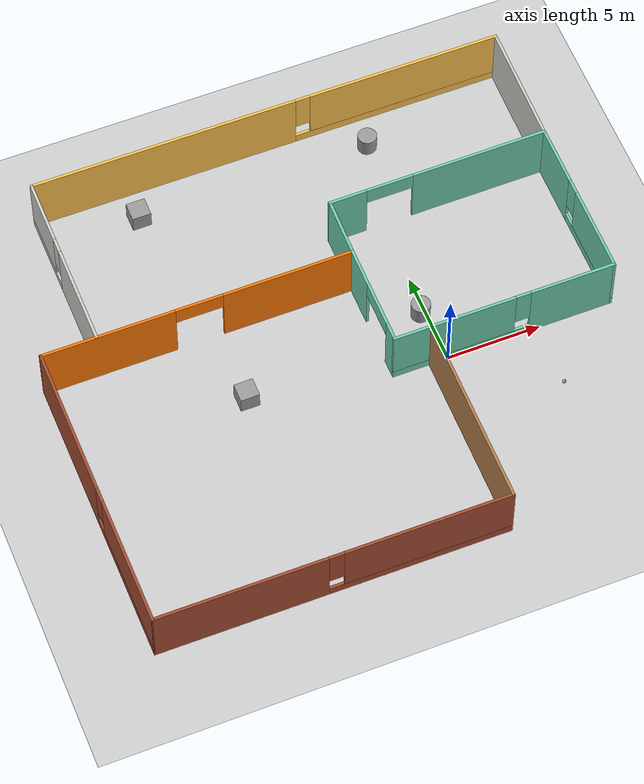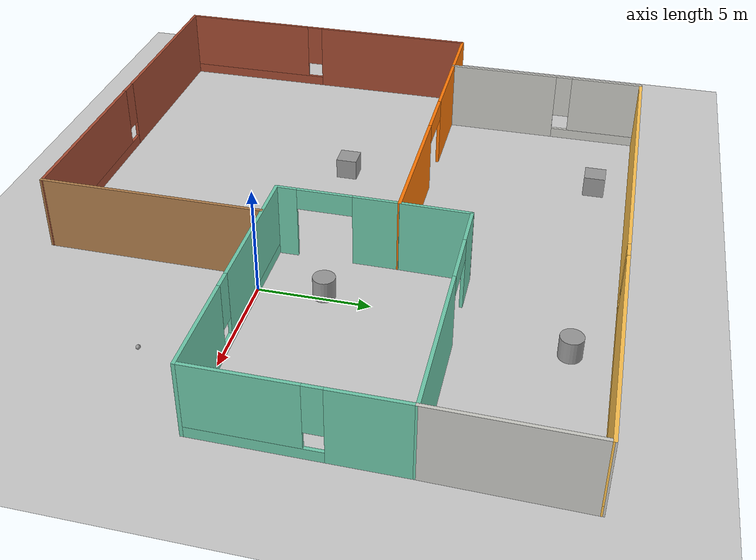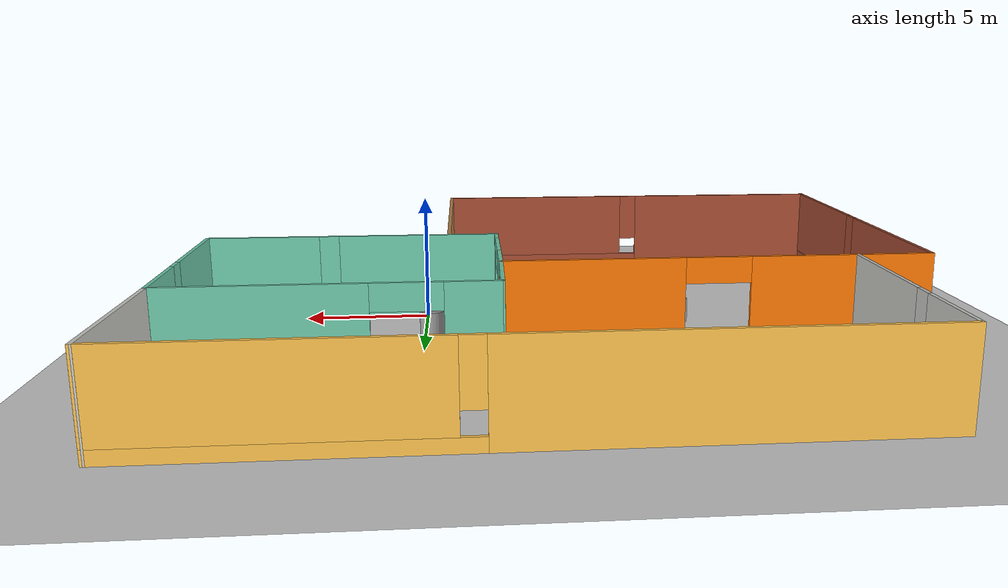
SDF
<sdf version="1.6">
 <world name="default">
  <plugin name="hello" filename="libhello.so"/>
  <light name="sun" type="directional">
   <pose>0 0 10 0 -0 0</pose>
   <diffuse>0.8 0.8 0.8 1</diffuse>
   <specular>0.2 0.2 0.2 1</specular>
   <attenuation>
    <range>1000</range>
    <constant>0.9</constant>
    <linear>0.01</linear>
    <quadratic>0.001</quadratic>
   </attenuation>
   <direction>-0.5 0.1 -0.9</direction>
  </light>
  <model name="ground_plane">
   <static>1</static>
   <link name="link">
    <collision name="collision">
     <geometry><plane><normal>0 0 1</normal><size>100 100</size></plane></geometry>
     <surface><friction><ode><mu>100</mu><mu2>50</mu2></ode></friction></surface>
    </collision>
    <visual name="visual">
     <cast_shadows>0</cast_shadows>
     <geometry><plane><normal>0 0 1</normal><size>100 100</size></plane></geometry>
     <material>
      <script><uri>file://media/materials/scripts/gazebo.material</uri><name>Gazebo/Grey</name></script>
     </material>
    </visual>
   </link>
  </model>
  <gravity>0 0 -9.8</gravity>
  <magnetic_field>6e-06 2.3e-05 -4.2e-05</magnetic_field>
  <atmosphere type="adiabatic"/>
  <physics name="default_physics" default="0" type="ode">
   <max_step_size>0.001</max_step_size>
   <real_time_factor>1</real_time_factor>
   <real_time_update_rate>1000</real_time_update_rate>
  </physics>
  <scene><ambient>0.4 0.4 0.4 1</ambient><background>0.7 0.7 0.7 1</background><shadows>1</shadows></scene>
  <spherical_coordinates>
   <surface_model>EARTH_WGS84</surface_model>
   <latitude_deg>0</latitude_deg>
   <longitude_deg>0</longitude_deg>
   <elevation>0</elevation>
   <heading_deg>0</heading_deg>
  </spherical_coordinates>
  <model name="Building">
   <pose>-5.17969 2.53003 0 0 -0 0</pose>
   <link name="Wall_11">
    <pose>14.0376 1.85918 0 0 0 -1.5708</pose>
    <visual name="Wall_11_Visual_0">
     <pose>-2.74243 0 1.75 0 -0 0</pose>
     <geometry><box><size>3.32963 0.15 3.5</size></box></geometry>
     <material>
      <script><uri>file://media/materials/scripts/gazebo.material</uri><name>Gazebo/Grey</name></script>
      <ambient>0.435294 0.796078 0.67451 1</ambient>
     </material>
     <meta><layer>0</layer></meta>
    </visual>
    <collision name="Wall_11_Collision_0">
     <geometry><box><size>3.32963 0.15 3.5</size></box></geometry>
     <pose>-2.74243 0 1.75 0 -0 0</pose>
    </collision>
    <visual name="Wall_11_Visual_1">
     <pose>1.66481 0 0.25 0 -0 0</pose>
     <geometry><box><size>5.48487 0.15 0.5</size></box></geometry>
     <material>
      <script><uri>file://media/materials/scripts/gazebo.material</uri><name>Gazebo/Grey</name></script>
      <ambient>0.435294 0.796078 0.67451 1</ambient>
     </material>
     <meta><layer>0</layer></meta>
    </visual>
    <collision name="Wall_11_Collision_1">
     <geometry><box><size>5.48487 0.15 0.5</size></box></geometry>
     <pose>1.66481 0 0.25 0 -0 0</pose>
    </collision>
    <visual name="Wall_11_Visual_2">
     <pose>2.06481 0 2 0 -0 0</pose>
     <geometry><box><size>4.68487 0.15 3</size></box></geometry>
     <material>
      <script><uri>file://media/materials/scripts/gazebo.material</uri><name>Gazebo/Grey</name></script>
      <ambient>0.435294 0.796078 0.67451 1</ambient>
     </material>
     <meta><layer>0</layer></meta>
    </visual>
    <collision name="Wall_11_Collision_2">
     <geometry><box><size>4.68487 0.15 3</size></box></geometry>
     <pose>2.06481 0 2 0 -0 0</pose>
    </collision>
    <visual name="Wall_11_Visual_3">
     <pose>-0.677619 0 2.4 0 -0 0</pose>
     <geometry><box><size>0.8 0.15 2.2</size></box></geometry>
     <material>
      <script><uri>file://media/materials/scripts/gazebo.material</uri><name>Gazebo/Grey</name></script>
      <ambient>0.435294 0.796078 0.67451 1</ambient>
     </material>
     <meta><layer>0</layer></meta>
    </visual>
    <collision name="Wall_11_Collision_3">
     <geometry><box><size>0.8 0.15 2.2</size></box></geometry>
     <pose>-0.677619 0 2.4 0 -0 0</pose>
    </collision>
   </link>
   <link name="Wall_12">
    <pose>8.15813 -2.47282 0 0 -0 3.14159</pose>
    <visual name="Wall_12_Visual_0">
     <pose>-3.67134 0 1.75 0 -0 0</pose>
     <geometry><box><size>4.56647 0.15 3.5</size></box></geometry>
     <material>
      <script><uri>file://media/materials/scripts/gazebo.material</uri><name>Gazebo/Grey</name></script>
      <ambient>0.435294 0.796078 0.67451 1</ambient>
     </material>
     <meta><layer>0</layer></meta>
    </visual>
    <collision name="Wall_12_Collision_0">
     <geometry><box><size>4.56647 0.15 3.5</size></box></geometry>
     <pose>-3.67134 0 1.75 0 -0 0</pose>
    </collision>
    <visual name="Wall_12_Visual_1">
     <pose>2.28324 0 0.25 0 -0 0</pose>
     <geometry><box><size>7.34269 0.15 0.5</size></box></geometry>
     <material>
      <script><uri>file://media/materials/scripts/gazebo.material</uri><name>Gazebo/Grey</name></script>
      <ambient>0.435294 0.796078 0.67451 1</ambient>
     </material>
     <meta><layer>0</layer></meta>
    </visual>
    <collision name="Wall_12_Collision_1">
     <geometry><box><size>7.34269 0.15 0.5</size></box></geometry>
     <pose>2.28324 0 0.25 0 -0 0</pose>
    </collision>
    <visual name="Wall_12_Visual_2">
     <pose>2.68324 0 2 0 -0 0</pose>
     <geometry><box><size>6.54269 0.15 3</size></box></geometry>
     <material>
      <script><uri>file://media/materials/scripts/gazebo.material</uri><name>Gazebo/Grey</name></script>
      <ambient>0.435294 0.796078 0.67451 1</ambient>
     </material>
     <meta><layer>0</layer></meta>
    </visual>
    <collision name="Wall_12_Collision_2">
     <geometry><box><size>6.54269 0.15 3</size></box></geometry>
     <pose>2.68324 0 2 0 -0 0</pose>
    </collision>
    <visual name="Wall_12_Visual_3">
     <pose>-0.988107 0 2.4 0 -0 0</pose>
     <geometry><box><size>0.8 0.15 2.2</size></box></geometry>
     <material>
      <script><uri>file://media/materials/scripts/gazebo.material</uri><name>Gazebo/Grey</name></script>
      <ambient>0.435294 0.796078 0.67451 1</ambient>
     </material>
     <meta><layer>0</layer></meta>
    </visual>
    <collision name="Wall_12_Collision_3">
     <geometry><box><size>0.8 0.15 2.2</size></box></geometry>
     <pose>-0.988107 0 2.4 0 -0 0</pose>
    </collision>
   </link>
   <link name="Wall_14">
    <collision name="Wall_14_Collision">
     <geometry><box><size>10.2635 0.15 3.5</size></box></geometry>
     <pose>0 0 1.75 0 -0 0</pose>
    </collision>
    <visual name="Wall_14_Visual">
     <pose>0 0 1.75 0 -0 0</pose>
     <geometry><box><size>10.2635 0.15 3.5</size></box></geometry>
     <material>
      <script><uri>file://media/materials/scripts/gazebo.material</uri><name>Gazebo/Wood</name></script>
      <ambient>0.996078 0.47451 0.0196078 1</ambient>
     </material>
     <meta><layer>0</layer></meta>
    </visual>
    <pose>4.22413 -7.58082 0 0 0 -1.57248</pose>
   </link>
   <link name="Wall_16">
    <pose>-14.0979 -4.78882 0 0 0 -1.56739</pose>
    <visual name="Wall_16_Visual_0">
     <pose>-3.8228 0 1.75 0 -0 0</pose>
     <geometry><box><size>8.0561 0.15 3.5</size></box></geometry>
     <material>
      <script><uri>file://media/materials/scripts/gazebo.material</uri><name>Gazebo/Bricks</name></script>
      <ambient>0.996078 0.47451 0.0196078 1</ambient>
     </material>
     <meta><layer>0</layer></meta>
    </visual>
    <collision name="Wall_16_Collision_0">
     <geometry><box><size>8.0561 0.15 3.5</size></box></geometry>
     <pose>-3.8228 0 1.75 0 -0 0</pose>
    </collision>
    <visual name="Wall_16_Visual_1">
     <pose>4.02805 0 0.25 0 -0 0</pose>
     <geometry><box><size>7.6456 0.15 0.5</size></box></geometry>
     <material>
      <script><uri>file://media/materials/scripts/gazebo.material</uri><name>Gazebo/Bricks</name></script>
      <ambient>0.996078 0.47451 0.0196078 1</ambient>
     </material>
     <meta><layer>0</layer></meta>
    </visual>
    <collision name="Wall_16_Collision_1">
     <geometry><box><size>7.6456 0.15 0.5</size></box></geometry>
     <pose>4.02805 0 0.25 0 -0 0</pose>
    </collision>
    <visual name="Wall_16_Visual_2">
     <pose>4.42805 0 2 0 -0 0</pose>
     <geometry><box><size>6.8456 0.15 3</size></box></geometry>
     <material>
      <script><uri>file://media/materials/scripts/gazebo.material</uri><name>Gazebo/Bricks</name></script>
      <ambient>0.996078 0.47451 0.0196078 1</ambient>
     </material>
     <meta><layer>0</layer></meta>
    </visual>
    <collision name="Wall_16_Collision_2">
     <geometry><box><size>6.8456 0.15 3</size></box></geometry>
     <pose>4.42805 0 2 0 -0 0</pose>
    </collision>
    <visual name="Wall_16_Visual_3">
     <pose>0.605252 0 2.4 0 -0 0</pose>
     <geometry><box><size>0.8 0.15 2.2</size></box></geometry>
     <material>
      <script><uri>file://media/materials/scripts/gazebo.material</uri><name>Gazebo/Bricks</name></script>
      <ambient>0.996078 0.47451 0.0196078 1</ambient>
     </material>
     <meta><layer>0</layer></meta>
    </visual>
    <collision name="Wall_16_Collision_3">
     <geometry><box><size>0.8 0.15 2.2</size></box></geometry>
     <pose>0.605252 0 2.4 0 -0 0</pose>
    </collision>
   </link>
   <link name="Wall_17">
    <pose>-4.92787 -12.6013 0 0 0 -0.003992</pose>
    <visual name="Wall_17_Visual_0">
     <pose>-4.76402 0 1.75 0 -0 0</pose>
     <geometry><box><size>8.909 0.15 3.5</size></box></geometry>
     <material>
      <script><uri>file://media/materials/scripts/gazebo.material</uri><name>Gazebo/Bricks</name></script>
      <ambient>0.996078 0.47451 0.0196078 1</ambient>
     </material>
     <meta><layer>0</layer></meta>
    </visual>
    <collision name="Wall_17_Collision_0">
     <geometry><box><size>8.909 0.15 3.5</size></box></geometry>
     <pose>-4.76402 0 1.75 0 -0 0</pose>
    </collision>
    <visual name="Wall_17_Visual_1">
     <pose>4.4545 0 0.25 0 -0 0</pose>
     <geometry><box><size>9.52804 0.15 0.5</size></box></geometry>
     <material>
      <script><uri>file://media/materials/scripts/gazebo.material</uri><name>Gazebo/Bricks</name></script>
      <ambient>0.996078 0.47451 0.0196078 1</ambient>
     </material>
     <meta><layer>0</layer></meta>
    </visual>
    <collision name="Wall_17_Collision_1">
     <geometry><box><size>9.52804 0.15 0.5</size></box></geometry>
     <pose>4.4545 0 0.25 0 -0 0</pose>
    </collision>
    <visual name="Wall_17_Visual_2">
     <pose>4.8545 0 2 0 -0 0</pose>
     <geometry><box><size>8.72804 0.15 3</size></box></geometry>
     <material>
      <script><uri>file://media/materials/scripts/gazebo.material</uri><name>Gazebo/Bricks</name></script>
      <ambient>0.996078 0.47451 0.0196078 1</ambient>
     </material>
     <meta><layer>0</layer></meta>
    </visual>
    <collision name="Wall_17_Collision_2">
     <geometry><box><size>8.72804 0.15 3</size></box></geometry>
     <pose>4.8545 0 2 0 -0 0</pose>
    </collision>
    <visual name="Wall_17_Visual_3">
     <pose>0.090482 0 2.4 0 -0 0</pose>
     <geometry><box><size>0.8 0.15 2.2</size></box></geometry>
     <material>
      <script><uri>file://media/materials/scripts/gazebo.material</uri><name>Gazebo/Bricks</name></script>
      <ambient>0.996078 0.47451 0.0196078 1</ambient>
     </material>
     <meta><layer>0</layer></meta>
    </visual>
    <collision name="Wall_17_Collision_3">
     <geometry><box><size>0.8 0.15 2.2</size></box></geometry>
     <pose>0.090482 0 2.4 0 -0 0</pose>
    </collision>
   </link>
   <link name="Wall_19">
    <pose>-11.2264 7.83718 0 0 -0 1.5708</pose>
    <visual name="Wall_19_Visual_0">
     <pose>-2.16282 0 1.75 0 -0 0</pose>
     <geometry><box><size>5.42436 0.15 3.5</size></box></geometry>
     <material>
      <script><uri>file://media/materials/scripts/gazebo.material</uri><name>Gazebo/CeilingTiled</name></script>
      <ambient>1 0.764706 0.305882 1</ambient>
     </material>
     <meta><layer>0</layer></meta>
    </visual>
    <collision name="Wall_19_Collision_0">
     <geometry><box><size>5.42436 0.15 3.5</size></box></geometry>
     <pose>-2.16282 0 1.75 0 -0 0</pose>
    </collision>
    <visual name="Wall_19_Visual_1">
     <pose>2.71218 0 0.25 0 -0 0</pose>
     <geometry><box><size>4.32564 0.15 0.5</size></box></geometry>
     <material>
      <script><uri>file://media/materials/scripts/gazebo.material</uri><name>Gazebo/CeilingTiled</name></script>
      <ambient>1 0.764706 0.305882 1</ambient>
     </material>
     <meta><layer>0</layer></meta>
    </visual>
    <collision name="Wall_19_Collision_1">
     <geometry><box><size>4.32564 0.15 0.5</size></box></geometry>
     <pose>2.71218 0 0.25 0 -0 0</pose>
    </collision>
    <visual name="Wall_19_Visual_2">
     <pose>3.11218 0 2 0 -0 0</pose>
     <geometry><box><size>3.52564 0.15 3</size></box></geometry>
     <material>
      <script><uri>file://media/materials/scripts/gazebo.material</uri><name>Gazebo/CeilingTiled</name></script>
      <ambient>1 0.764706 0.305882 1</ambient>
     </material>
     <meta><layer>0</layer></meta>
    </visual>
    <collision name="Wall_19_Collision_2">
     <geometry><box><size>3.52564 0.15 3</size></box></geometry>
     <pose>3.11218 0 2 0 -0 0</pose>
    </collision>
    <visual name="Wall_19_Visual_3">
     <pose>0.949362 0 2.4 0 -0 0</pose>
     <geometry><box><size>0.8 0.15 2.2</size></box></geometry>
     <material>
      <script><uri>file://media/materials/scripts/gazebo.material</uri><name>Gazebo/CeilingTiled</name></script>
      <ambient>1 0.764706 0.305882 1</ambient>
     </material>
     <meta><layer>0</layer></meta>
    </visual>
    <collision name="Wall_19_Collision_3">
     <geometry><box><size>0.8 0.15 2.2</size></box></geometry>
     <pose>0.949362 0 2.4 0 -0 0</pose>
    </collision>
   </link>
   <link name="Wall_20">
    <pose>1.44863 12.6372 0 0 -0 0</pose>
    <visual name="Wall_20_Visual_0">
     <pose>-5.59643 0 1.75 0 -0 0</pose>
     <geometry><box><size>14.3071 0.15 3.5</size></box></geometry>
     <material>
      <script><uri>file://media/materials/scripts/gazebo.material</uri><name>Gazebo/Grey</name></script>
      <ambient>1 0.764706 0.305882 1</ambient>
     </material>
     <meta><layer>0</layer></meta>
    </visual>
    <collision name="Wall_20_Collision_0">
     <geometry><box><size>14.3071 0.15 3.5</size></box></geometry>
     <pose>-5.59643 0 1.75 0 -0 0</pose>
    </collision>
    <visual name="Wall_20_Visual_1">
     <pose>7.15357 0 0.25 0 -0 0</pose>
     <geometry><box><size>11.1929 0.15 0.5</size></box></geometry>
     <material>
      <script><uri>file://media/materials/scripts/gazebo.material</uri><name>Gazebo/Grey</name></script>
      <ambient>1 0.764706 0.305882 1</ambient>
     </material>
     <meta><layer>0</layer></meta>
    </visual>
    <collision name="Wall_20_Collision_1">
     <geometry><box><size>11.1929 0.15 0.5</size></box></geometry>
     <pose>7.15357 0 0.25 0 -0 0</pose>
    </collision>
    <visual name="Wall_20_Visual_2">
     <pose>7.55357 0 2 0 -0 0</pose>
     <geometry><box><size>10.3929 0.15 3</size></box></geometry>
     <material>
      <script><uri>file://media/materials/scripts/gazebo.material</uri><name>Gazebo/Grey</name></script>
      <ambient>1 0.764706 0.305882 1</ambient>
     </material>
     <meta><layer>0</layer></meta>
    </visual>
    <collision name="Wall_20_Collision_2">
     <geometry><box><size>10.3929 0.15 3</size></box></geometry>
     <pose>7.55357 0 2 0 -0 0</pose>
    </collision>
    <visual name="Wall_20_Visual_3">
     <pose>1.95713 0 2.4 0 -0 0</pose>
     <geometry><box><size>0.8 0.15 2.2</size></box></geometry>
     <material>
      <script><uri>file://media/materials/scripts/gazebo.material</uri><name>Gazebo/Grey</name></script>
      <ambient>1 0.764706 0.305882 1</ambient>
     </material>
     <meta><layer>0</layer></meta>
    </visual>
    <collision name="Wall_20_Collision_3">
     <geometry><box><size>0.8 0.15 2.2</size></box></geometry>
     <pose>1.95713 0 2.4 0 -0 0</pose>
    </collision>
   </link>
   <link name="Wall_21">
    <collision name="Wall_21_Collision">
     <geometry><box><size>6.59647 0.15 3.5</size></box></geometry>
     <pose>0 0 1.75 0 -0 0</pose>
    </collision>
    <visual name="Wall_21_Visual">
     <pose>0 0 1.75 0 -0 0</pose>
     <geometry><box><size>6.59647 0.15 3.5</size></box></geometry>
     <material>
      <script><uri>file://media/materials/scripts/gazebo.material</uri><name>Gazebo/CeilingTiled</name></script>
      <ambient>1 0.764706 0.305882 1</ambient>
     </material>
     <meta><layer>0</layer></meta>
    </visual>
    <pose>14.0806 9.41418 0 0 0 -1.58414</pose>
   </link>
   <link name="Wall_5">
    <pose>-5.92287 3.00718 0 0 -0 0.002439</pose>
    <visual name="Wall_5_Visual_0">
     <pose>-4.73677 0 1.75 0 -0 0</pose>
     <geometry><box><size>7.07951 0.15 3.5</size></box></geometry>
     <material>
      <script><uri>file://media/materials/scripts/gazebo.material</uri><name>Gazebo/Grey</name></script>
      <ambient>0.996078 0.47451 0.0196078 1</ambient>
     </material>
     <meta><layer>0</layer></meta>
    </visual>
    <collision name="Wall_5_Collision_0">
     <geometry><box><size>7.07951 0.15 3.5</size></box></geometry>
     <pose>-4.73677 0 1.75 0 -0 0</pose>
    </collision>
    <visual name="Wall_5_Visual_1">
     <pose>4.78975 0 1.75 0 -0 0</pose>
     <geometry><box><size>6.97354 0.15 3.5</size></box></geometry>
     <material>
      <script><uri>file://media/materials/scripts/gazebo.material</uri><name>Gazebo/Grey</name></script>
      <ambient>0.996078 0.47451 0.0196078 1</ambient>
     </material>
     <meta><layer>0</layer></meta>
    </visual>
    <collision name="Wall_5_Collision_1">
     <geometry><box><size>6.97354 0.15 3.5</size></box></geometry>
     <pose>4.78975 0 1.75 0 -0 0</pose>
    </collision>
    <visual name="Wall_5_Visual_2">
     <pose>0.052984 0 3 0 -0 0</pose>
     <geometry><box><size>2.5 0.15 1</size></box></geometry>
     <material>
      <script><uri>file://media/materials/scripts/gazebo.material</uri><name>Gazebo/Grey</name></script>
      <ambient>0.996078 0.47451 0.0196078 1</ambient>
     </material>
     <meta><layer>0</layer></meta>
    </visual>
    <collision name="Wall_5_Collision_2">
     <geometry><box><size>2.5 0.15 1</size></box></geometry>
     <pose>0.052984 0 3 0 -0 0</pose>
    </collision>
   </link>
   <link name="Wall_6">
    <pose>2.27863 0.352177 0 0 0 -1.5708</pose>
    <visual name="Wall_6_Visual_0">
     <pose>-1.6795 0 1.75 0 -0 0</pose>
     <geometry><box><size>2.141 0.15 3.5</size></box></geometry>
     <material>
      <script><uri>file://media/materials/scripts/gazebo.material</uri><name>Gazebo/Grey</name></script>
      <ambient>0.435294 0.796078 0.67451 1</ambient>
     </material>
     <meta><layer>0</layer></meta>
    </visual>
    <collision name="Wall_6_Collision_0">
     <geometry><box><size>2.141 0.15 3.5</size></box></geometry>
     <pose>-1.6795 0 1.75 0 -0 0</pose>
    </collision>
    <visual name="Wall_6_Visual_1">
     <pose>2.3205 0 1.75 0 -0 0</pose>
     <geometry><box><size>0.859005 0.15 3.5</size></box></geometry>
     <material>
      <script><uri>file://media/materials/scripts/gazebo.material</uri><name>Gazebo/Grey</name></script>
      <ambient>0.435294 0.796078 0.67451 1</ambient>
     </material>
     <meta><layer>0</layer></meta>
    </visual>
    <collision name="Wall_6_Collision_1">
     <geometry><box><size>0.859005 0.15 3.5</size></box></geometry>
     <pose>2.3205 0 1.75 0 -0 0</pose>
    </collision>
    <visual name="Wall_6_Visual_2">
     <pose>0.640995 0 3 0 -0 0</pose>
     <geometry><box><size>2.5 0.15 1</size></box></geometry>
     <material>
      <script><uri>file://media/materials/scripts/gazebo.material</uri><name>Gazebo/Grey</name></script>
      <ambient>0.435294 0.796078 0.67451 1</ambient>
     </material>
     <meta><layer>0</layer></meta>
    </visual>
    <collision name="Wall_6_Collision_2">
     <geometry><box><size>2.5 0.15 1</size></box></geometry>
     <pose>0.640995 0 3 0 -0 0</pose>
    </collision>
   </link>
   <link name="Wall_8">
    <collision name="Wall_8_Collision">
     <geometry><box><size>3.26826 0.15 3.5</size></box></geometry>
     <pose>0 0 1.75 0 -0 0</pose>
    </collision>
    <visual name="Wall_8_Visual">
     <pose>0 0 1.75 0 -0 0</pose>
     <geometry><box><size>3.26826 0.15 3.5</size></box></geometry>
     <material>
      <script><uri>file://media/materials/scripts/gazebo.material</uri><name>Gazebo/Grey</name></script>
      <ambient>0.435294 0.796078 0.67451 1</ambient>
     </material>
     <meta><layer>0</layer></meta>
    </visual>
    <pose>2.30213 4.58618 0 0 -0 1.55572</pose>
   </link>
   <link name="Wall_9">
    <pose>8.18163 6.16818 0 0 -0 0.003928</pose>
    <visual name="Wall_9_Visual_0">
     <pose>-4.90179 0 1.75 0 -0 0</pose>
     <geometry><box><size>2.05906 0.15 3.5</size></box></geometry>
     <material>
      <script><uri>file://media/materials/scripts/gazebo.material</uri><name>Gazebo/Grey</name></script>
      <ambient>0.435294 0.796078 0.67451 1</ambient>
     </material>
     <meta><layer>0</layer></meta>
    </visual>
    <collision name="Wall_9_Collision_0">
     <geometry><box><size>2.05906 0.15 3.5</size></box></geometry>
     <pose>-4.90179 0 1.75 0 -0 0</pose>
    </collision>
    <visual name="Wall_9_Visual_1">
     <pose>2.27953 0 1.75 0 -0 0</pose>
     <geometry><box><size>7.30357 0.15 3.5</size></box></geometry>
     <material>
      <script><uri>file://media/materials/scripts/gazebo.material</uri><name>Gazebo/Grey</name></script>
      <ambient>0.435294 0.796078 0.67451 1</ambient>
     </material>
     <meta><layer>0</layer></meta>
    </visual>
    <collision name="Wall_9_Collision_1">
     <geometry><box><size>7.30357 0.15 3.5</size></box></geometry>
     <pose>2.27953 0 1.75 0 -0 0</pose>
    </collision>
    <visual name="Wall_9_Visual_2">
     <pose>-2.62226 0 3 0 -0 0</pose>
     <geometry><box><size>2.5 0.15 1</size></box></geometry>
     <material>
      <script><uri>file://media/materials/scripts/gazebo.material</uri><name>Gazebo/Grey</name></script>
      <ambient>0.435294 0.796078 0.67451 1</ambient>
     </material>
     <meta><layer>0</layer></meta>
    </visual>
    <collision name="Wall_9_Collision_2">
     <geometry><box><size>2.5 0.15 1</size></box></geometry>
     <pose>-2.62226 0 3 0 -0 0</pose>
    </collision>
   </link>
   <static>1</static>
  </model>
  <model name="my_ball">
   <link name="link_0">
    <inertial>
     <mass>1</mass>
     <inertia><ixx>0.1</ixx><ixy>0</ixy><ixz>0</ixz><iyy>0.1</iyy><iyz>0</iyz><izz>0.1</izz></inertia>
    </inertial>
    <visual name="visual">
     <geometry><sphere><radius>0.1</radius></sphere></geometry>
     <material>
      <lighting>1</lighting>
      <script><uri>file://media/materials/scripts/gazebo.material</uri><name>Gazebo/Grey</name></script>
      <shader type="pixel"><normal_map>__default__</normal_map></shader>
      <ambient>1 1 1 1</ambient>
      <diffuse>1 1 1 1</diffuse>
      <specular>1 1 1 1</specular>
      <emissive>1 1 1 1</emissive>
     </material>
    </visual>
    <collision name="collision">
     <geometry><sphere><radius>0.1</radius></sphere></geometry>
     <surface>
      <friction>
       <ode><mu>1</mu><mu2>1</mu2><fdir1>0 0 0</fdir1><slip1>0</slip1><slip2>0</slip2></ode>
       <torsional>
        <coefficient>1</coefficient>
        <patch_radius>0</patch_radius>
        <surface_radius>0</surface_radius>
        <use_patch_radius>1</use_patch_radius>
        <ode><slip>0</slip></ode>
       </torsional>
      </friction>
      <bounce><restitution_coefficient>0</restitution_coefficient><threshold>1e+06</threshold></bounce>
      <contact>
       <collide_without_contact>0</collide_without_contact>
       <collide_without_contact_bitmask>1</collide_without_contact_bitmask>
       <collide_bitmask>1</collide_bitmask>
       <ode>
        <soft_cfm>0</soft_cfm>
        <soft_erp>0.2</soft_erp>
        <kp>1e+13</kp>
        <kd>1</kd>
        <max_vel>0.01</max_vel>
        <min_depth>0</min_depth>
       </ode>
       <bullet>
        <split_impulse>1</split_impulse>
        <split_impulse_penetration_threshold>-0.01</split_impulse_penetration_threshold>
        <soft_cfm>0</soft_cfm>
        <soft_erp>0.2</soft_erp>
        <kp>1e+13</kp>
        <kd>1</kd>
       </bullet>
      </contact>
     </surface>
    </collision>
   </link>
   <static>0</static>
   <pose>4.82553 -3.43016 0.1 -0.018471 3e-06 -0</pose>
  </model>
  <model name="unit_box">
   <pose>-10.1718 1.42828 0.499995 0 1e-05 0</pose>
   <link name="link">
    <inertial>
     <mass>1</mass>
     <inertia>
      <ixx>0.166667</ixx>
      <ixy>0</ixy>
      <ixz>0</ixz>
      <iyy>0.166667</iyy>
      <iyz>0</iyz>
      <izz>0.166667</izz>
     </inertia>
    </inertial>
    <collision name="collision"><geometry><box><size>1 1 1</size></box></geometry></collision>
    <visual name="visual">
     <geometry><box><size>1 1 1</size></box></geometry>
     <material>
      <script><name>Gazebo/Grey</name><uri>file://media/materials/scripts/gazebo.material</uri></script>
     </material>
    </visual>
   </link>
  </model>
  <model name="unit_cylinder">
   <pose>1.1169 13.414 0.499993 -3e-06 2e-06 0</pose>
   <link name="link">
    <inertial>
     <mass>1</mass>
     <inertia><ixx>0.145833</ixx><ixy>0</ixy><ixz>0</ixz><iyy>0.145833</iyy><iyz>0</iyz><izz>0.125</izz></inertia>
    </inertial>
    <collision name="collision">
     <geometry><cylinder><radius>0.5</radius><length>1</length></cylinder></geometry>
    </collision>
    <visual name="visual">
     <geometry><cylinder><radius>0.5</radius><length>1</length></cylinder></geometry>
     <material>
      <script><name>Gazebo/Grey</name><uri>file://media/materials/scripts/gazebo.material</uri></script>
     </material>
    </visual>
   </link>
  </model>
  <model name="unit_cylinder_0">
   <pose>-0.268076 2.89777 0.499993 -3e-06 2e-06 0</pose>
   <link name="link">
    <inertial>
     <mass>1</mass>
     <inertia><ixx>0.145833</ixx><ixy>0</ixy><ixz>0</ixz><iyy>0.145833</iyy><iyz>0</iyz><izz>0.125</izz></inertia>
    </inertial>
    <collision name="collision">
     <geometry><cylinder><radius>0.5</radius><length>1</length></cylinder></geometry>
    </collision>
    <visual name="visual">
     <geometry><cylinder><radius>0.5</radius><length>1</length></cylinder></geometry>
     <material>
      <script><name>Gazebo/Grey</name><uri>file://media/materials/scripts/gazebo.material</uri></script>
     </material>
    </visual>
   </link>
  </model>
  <model name="unit_box_0">
   <pose>-11.4151 13.4914 0.499995 0 -1e-05 0</pose>
   <link name="link">
    <inertial>
     <mass>1</mass>
     <inertia>
      <ixx>0.166667</ixx>
      <ixy>0</ixy>
      <ixz>0</ixz>
      <iyy>0.166667</iyy>
      <iyz>0</iyz>
      <izz>0.166667</izz>
     </inertia>
    </inertial>
    <collision name="collision"><geometry><box><size>1 1 1</size></box></geometry></collision>
    <visual name="visual">
     <geometry><box><size>1 1 1</size></box></geometry>
     <material>
      <script><name>Gazebo/Grey</name><uri>file://media/materials/scripts/gazebo.material</uri></script>
     </material>
    </visual>
   </link>
  </model>
 </world>
</sdf>
